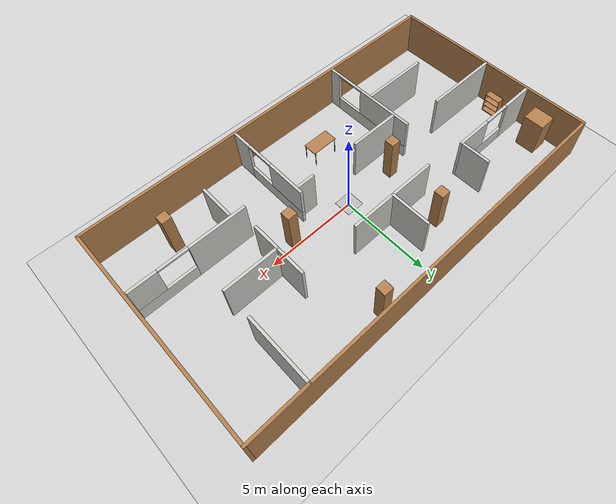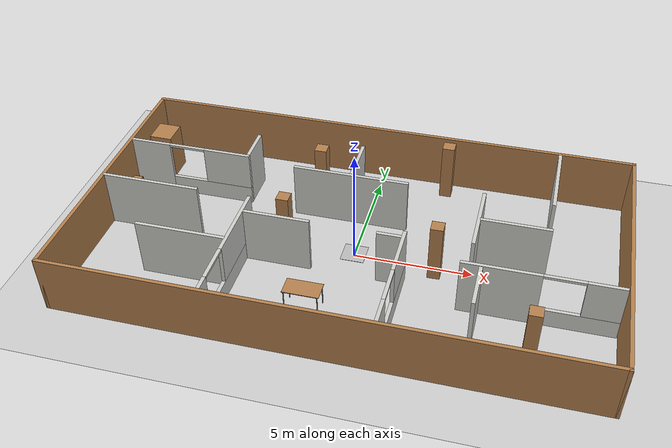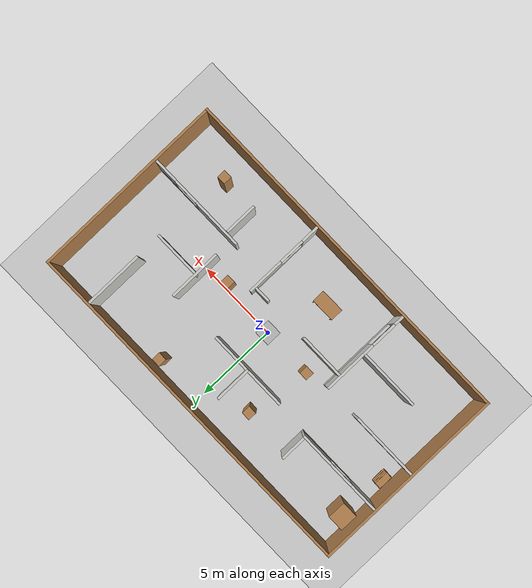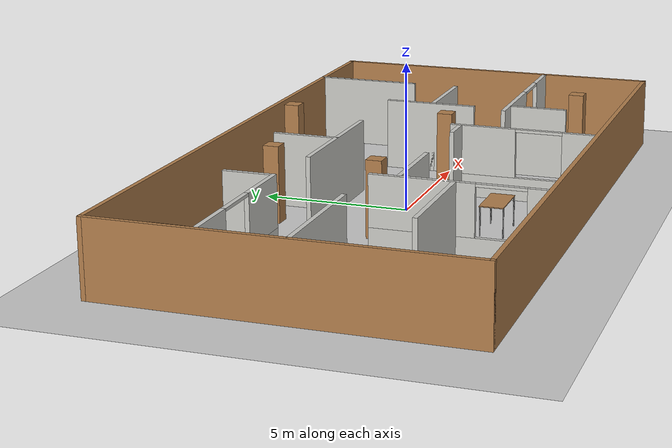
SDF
<sdf version="1.6">
 <world name="default">
  <light name="sun" type="directional">
   <pose>0 0 10 0 -0 0</pose>
   <diffuse>0.8 0.8 0.8 1</diffuse>
   <specular>0.2 0.2 0.2 1</specular>
   <attenuation>
    <range>1000</range>
    <constant>0.9</constant>
    <linear>0.01</linear>
    <quadratic>0.001</quadratic>
   </attenuation>
   <direction>-0.5 0.1 -0.9</direction>
  </light>
  <model name="ground_plane">
   <static>1</static>
   <link name="link">
    <collision name="collision">
     <geometry><plane><normal>0 0 1</normal><size>25 25</size></plane></geometry>
     <surface><friction><ode><mu>100</mu><mu2>50</mu2></ode></friction></surface>
    </collision>
    <visual name="visual">
     <cast_shadows>0</cast_shadows>
     <geometry><plane><normal>0 0 1</normal><size>25 25</size></plane></geometry>
     <material>
      <script><uri>file://media/materials/scripts/gazebo.material</uri><name>Gazebo/Grey</name></script>
     </material>
    </visual>
   </link>
  </model>
  <gravity>0 0 -9.8</gravity>
  <magnetic_field>6e-06 2.3e-05 -4.2e-05</magnetic_field>
  <atmosphere type="adiabatic"/>
  <plugin name="ros_interface_plugin" filename="librotors_gazebo_ros_interface_plugin.so"/>
  <physics type="ode">
   <gravity>0 0 -9.8066</gravity>
   <ode>
    <solver>
     <type>quick</type>
     <iters>10</iters>
     <sor>1.3</sor>
     <use_dynamic_moi_rescaling>0</use_dynamic_moi_rescaling>
    </solver>
    <constraints>
     <cfm>0.0</cfm>
     <erp>0.2</erp>
     <contact_max_correcting_vel>100</contact_max_correcting_vel>
     <contact_surface_layer>0.001</contact_surface_layer>
    </constraints>
   </ode>
   <max_step_size>0.004</max_step_size>
   <real_time_factor>1.0</real_time_factor>
   <real_time_update_rate>250</real_time_update_rate>
   <magnetic_field>6.0e-6 2.3e-5 -4.2e-5</magnetic_field>
  </physics>
  <scene>
   <sky><clouds><speed>30</speed></clouds><sunrise>5</sunrise><time>10</time><sunset>15</sunset></sky>
   <ambient>0.5 0.5 0.5 1</ambient>
   <background>0.7 0.7 0.7 1</background>
   <shadows>1</shadows>
  </scene>
  <spherical_coordinates>
   <surface_model>EARTH_WGS84</surface_model>
   <latitude_deg>0</latitude_deg>
   <longitude_deg>0</longitude_deg>
   <elevation>0</elevation>
   <heading_deg>0</heading_deg>
  </spherical_coordinates>
  <model name="20230316">
   <link name="Wall_14">
    <collision name="Wall_14_Collision">
     <geometry><box><size>12 0.15 2.5</size></box></geometry>
     <pose>0 0 1.25 0 -0 0</pose>
    </collision>
    <visual name="Wall_14_Visual">
     <pose>0 0 1.25 0 -0 0</pose>
     <geometry><box><size>12 0.15 2.5</size></box></geometry>
     <material>
      <script><uri>file://media/materials/scripts/gazebo.material</uri><name>Gazebo/Wood</name></script>
      <ambient>1 1 1 1</ambient>
     </material>
     <meta><layer>0</layer></meta>
    </visual>
    <pose>-10.925 0 0 0 -0 -1.5708</pose>
   </link>
   <link name="startflag">
    <pose>0 0 0.115 0 -0 0</pose>
    <inertial>
     <mass>0.39</mass>
     <inertia><ixx>0.00058</ixx><ixy>0</ixy><ixz>0</ixz><iyy>0.00058</iyy><iyz>0</iyz><izz>0.00019</izz></inertia>
    </inertial>
    <collision name="collision"><geometry><box><size>1 1 0.01</size></box></geometry></collision>
    <visual name="visual">
     <geometry><box><size>1 1 0.01</size></box></geometry>
     <material>
      <script>
       <uri>model://apriltag/materials/scripts</uri>
       <uri>model://apriltag/materials/textures</uri>
       <name>startflag/Diffuse</name>
      </script>
     </material>
    </visual>
   </link>
   <link name="Wall_15">
    <collision name="Wall_15_Collision">
     <geometry><box><size>22 0.15 2.5</size></box></geometry>
     <pose>0 0 1.25 0 -0 0</pose>
    </collision>
    <visual name="Wall_15_Visual">
     <pose>0 0 1.25 0 -0 0</pose>
     <geometry><box><size>22 0.15 2.5</size></box></geometry>
     <material>
      <script><uri>file://media/materials/scripts/gazebo.material</uri><name>Gazebo/Wood</name></script>
      <ambient>1 1 1 1</ambient>
     </material>
     <meta><layer>0</layer></meta>
    </visual>
    <pose>0 -5.925 0 0 -0 0</pose>
   </link>
   <link name="Wall_16">
    <collision name="Wall_16_Collision">
     <geometry><box><size>12 0.15 2.5</size></box></geometry>
     <pose>0 0 1.25 0 -0 0</pose>
    </collision>
    <visual name="Wall_16_Visual">
     <pose>0 0 1.25 0 -0 0</pose>
     <geometry><box><size>12 0.15 2.5</size></box></geometry>
     <material>
      <script><uri>file://media/materials/scripts/gazebo.material</uri><name>Gazebo/Wood</name></script>
      <ambient>1 1 1 1</ambient>
     </material>
     <meta><layer>0</layer></meta>
    </visual>
    <pose>10.925 0 0 0 -0 1.5708</pose>
   </link>
   <link name="Wall_17">
    <collision name="Wall_17_Collision">
     <geometry><box><size>22 0.15 2.5</size></box></geometry>
     <pose>0 0 1.25 0 -0 0</pose>
    </collision>
    <visual name="Wall_17_Visual">
     <pose>0 0 1.25 0 -0 0</pose>
     <geometry><box><size>22 0.15 2.5</size></box></geometry>
     <material>
      <script><uri>file://media/materials/scripts/gazebo.material</uri><name>Gazebo/Wood</name></script>
      <ambient>1 1 1 1</ambient>
     </material>
     <meta><layer>0</layer></meta>
    </visual>
    <pose>0 5.925 0 0 -0 3.14159</pose>
   </link>
   <link name="Wall_22">
    <collision name="Wall_22_Collision">
     <geometry><box><size>3.75 0.15 2.5</size></box></geometry>
     <pose>0 0 1.25 0 -0 0</pose>
    </collision>
    <visual name="Wall_22_Visual">
     <pose>0 0 1.25 0 -0 0</pose>
     <geometry><box><size>3.75 0.15 2.5</size></box></geometry>
     <material>
      <script><uri>file://media/materials/scripts/gazebo.material</uri><name>Gazebo/CeilingTiled</name></script>
      <ambient>0.921569 0.807843 0.615686 1</ambient>
     </material>
     <meta><layer>0</layer></meta>
    </visual>
    <pose>7.80154 4.0984 0 0 -0 -1.5708</pose>
   </link>
   <link name="Wall_25">
    <collision name="Wall_25_Collision">
     <geometry><box><size>3.25 0.15 2.5</size></box></geometry>
     <pose>0 0 1.25 0 -0 0</pose>
    </collision>
    <visual name="Wall_25_Visual">
     <pose>0 0 1.25 0 -0 0</pose>
     <geometry><box><size>3.25 0.15 2.5</size></box></geometry>
     <material>
      <script><uri>file://media/materials/scripts/gazebo.material</uri><name>Gazebo/CeilingTiled</name></script>
      <ambient>0.921569 0.807843 0.615686 1</ambient>
     </material>
     <meta><layer>0</layer></meta>
    </visual>
    <pose>4.95532 0.704173 0 0 -0 -1.5708</pose>
   </link>
   <link name="Wall_28">
    <collision name="Wall_28_Collision">
     <geometry><box><size>3 0.15 2.5</size></box></geometry>
     <pose>0 0 1.25 0 -0 0</pose>
    </collision>
    <visual name="Wall_28_Visual">
     <pose>0 0 1.25 0 -0 0</pose>
     <geometry><box><size>3 0.15 2.5</size></box></geometry>
     <material>
      <script><uri>file://media/materials/scripts/gazebo.material</uri><name>Gazebo/CeilingTiled</name></script>
      <ambient>0.921569 0.807843 0.615686 1</ambient>
     </material>
     <meta><layer>0</layer></meta>
    </visual>
    <pose>6.38032 0.631561 0 0 -0 0</pose>
   </link>
   <link name="Wall_30">
    <collision name="Wall_30_Collision">
     <geometry><box><size>2.25 0.15 2.5</size></box></geometry>
     <pose>0 0 1.25 0 -0 0</pose>
    </collision>
    <visual name="Wall_30_Visual">
     <pose>0 0 1.25 0 -0 0</pose>
     <geometry><box><size>2.25 0.15 2.5</size></box></geometry>
     <material>
      <script><uri>file://media/materials/scripts/gazebo.material</uri><name>Gazebo/CeilingTiled</name></script>
      <ambient>0.921569 0.807843 0.615686 1</ambient>
     </material>
     <meta><layer>0</layer></meta>
    </visual>
    <pose>-0.710524 3.27899 0 0 -0 -1.5708</pose>
   </link>
   <link name="Wall_32">
    <collision name="Wall_32_Collision">
     <geometry><box><size>5 0.15 2.5</size></box></geometry>
     <pose>0 0 1.25 0 -0 0</pose>
    </collision>
    <visual name="Wall_32_Visual">
     <pose>0 0 1.25 0 -0 0</pose>
     <geometry><box><size>5 0.15 2.5</size></box></geometry>
     <material>
      <script><uri>file://media/materials/scripts/gazebo.material</uri><name>Gazebo/CeilingTiled</name></script>
      <ambient>0.921569 0.807843 0.615686 1</ambient>
     </material>
     <meta><layer>0</layer></meta>
    </visual>
    <pose>-0.732742 2.20097 0 0 -0 0</pose>
   </link>
   <link name="Wall_41">
    <collision name="Wall_41_Collision">
     <geometry><box><size>4.25 0.15 2.5</size></box></geometry>
     <pose>0 0 1.25 0 -0 0</pose>
    </collision>
    <visual name="Wall_41_Visual">
     <pose>0 0 1.25 0 -0 0</pose>
     <geometry><box><size>4.25 0.15 2.5</size></box></geometry>
     <material>
      <script><uri>file://media/materials/scripts/gazebo.material</uri><name>Gazebo/CeilingTiled</name></script>
      <ambient>0.921569 0.807843 0.615686 1</ambient>
     </material>
     <meta><layer>0</layer></meta>
    </visual>
    <pose>-8.7952 -0.299446 0 0 -0 0</pose>
   </link>
   <link name="Wall_43">
    <collision name="Wall_43_Collision">
     <geometry><box><size>3.75 0.15 2.5</size></box></geometry>
     <pose>0 0 1.25 0 -0 0</pose>
    </collision>
    <visual name="Wall_43_Visual">
     <pose>0 0 1.25 0 -0 0</pose>
     <geometry><box><size>3.75 0.15 2.5</size></box></geometry>
     <material>
      <script><uri>file://media/materials/scripts/gazebo.material</uri><name>Gazebo/CeilingTiled</name></script>
      <ambient>0.921569 0.807843 0.615686 1</ambient>
     </material>
     <meta><layer>0</layer></meta>
    </visual>
    <pose>-6.33198 -2.95947 0 0 -0 0</pose>
   </link>
   <static>1</static>
  </model>
  <model name="window1">
   <pose>7.71672 -2.0654 0 0 -0 0</pose>
   <link name="Wall_0">
    <visual name="Wall_0_Visual_0">
     <pose>-1.54209 0 1.25 0 -0 0</pose>
     <geometry><box><size>3.11583 0.15 2.5</size></box></geometry>
     <material>
      <script><uri>file://media/materials/scripts/gazebo.material</uri><name>Gazebo/CeilingTiled</name></script>
      <ambient>1 0.764706 0.305882 1</ambient>
     </material>
     <meta><layer>0</layer></meta>
    </visual>
    <collision name="Wall_0_Collision_0">
     <geometry><box><size>3.11583 0.15 2.5</size></box></geometry>
     <pose>-1.54209 0 1.25 0 -0 0</pose>
    </collision>
    <visual name="Wall_0_Visual_1">
     <pose>1.55791 0 0.4 0 -0 0</pose>
     <geometry><box><size>3.08418 0.15 0.8</size></box></geometry>
     <material>
      <script><uri>file://media/materials/scripts/gazebo.material</uri><name>Gazebo/CeilingTiled</name></script>
      <ambient>1 0.764706 0.305882 1</ambient>
     </material>
     <meta><layer>0</layer></meta>
    </visual>
    <collision name="Wall_0_Collision_1">
     <geometry><box><size>3.08418 0.15 0.8</size></box></geometry>
     <pose>1.55791 0 0.4 0 -0 0</pose>
    </collision>
    <visual name="Wall_0_Visual_2">
     <pose>2.35791 0 1.65 0 -0 0</pose>
     <geometry><box><size>1.48418 0.15 1.7</size></box></geometry>
     <material>
      <script><uri>file://media/materials/scripts/gazebo.material</uri><name>Gazebo/CeilingTiled</name></script>
      <ambient>1 0.764706 0.305882 1</ambient>
     </material>
     <meta><layer>0</layer></meta>
    </visual>
    <collision name="Wall_0_Collision_2">
     <geometry><box><size>1.48418 0.15 1.7</size></box></geometry>
     <pose>2.35791 0 1.65 0 -0 0</pose>
    </collision>
    <visual name="Wall_0_Visual_3">
     <pose>0.815825 0 2.45 0 -0 0</pose>
     <geometry><box><size>1.6 0.15 0.1</size></box></geometry>
     <material>
      <script><uri>file://media/materials/scripts/gazebo.material</uri><name>Gazebo/CeilingTiled</name></script>
      <ambient>1 0.764706 0.305882 1</ambient>
     </material>
     <meta><layer>0</layer></meta>
    </visual>
    <collision name="Wall_0_Collision_3">
     <geometry><box><size>1.6 0.15 0.1</size></box></geometry>
     <pose>0.815825 0 2.45 0 -0 0</pose>
    </collision>
   </link>
   <static>1</static>
  </model>
  <model name="window2">
   <pose>2.26488 -3.35 0 0 -0 0</pose>
   <link name="Wall_2">
    <pose>0 -0 0 0 -0 1.5708</pose>
    <visual name="Wall_2_Visual_0">
     <pose>-1.94455 0 1.25 0 -0 0</pose>
     <geometry><box><size>1.1109 0.15 2.5</size></box></geometry>
     <material>
      <script><uri>file://media/materials/scripts/gazebo.material</uri><name>Gazebo/CeilingTiled</name></script>
      <ambient>1 0.764706 0.305882 1</ambient>
     </material>
     <meta><layer>0</layer></meta>
    </visual>
    <collision name="Wall_2_Collision_0">
     <geometry><box><size>1.1109 0.15 2.5</size></box></geometry>
     <pose>-1.94455 0 1.25 0 -0 0</pose>
    </collision>
    <visual name="Wall_2_Visual_1">
     <pose>0.555448 0 0.4 0 -0 0</pose>
     <geometry><box><size>3.8891 0.15 0.8</size></box></geometry>
     <material>
      <script><uri>file://media/materials/scripts/gazebo.material</uri><name>Gazebo/CeilingTiled</name></script>
      <ambient>1 0.764706 0.305882 1</ambient>
     </material>
     <meta><layer>0</layer></meta>
    </visual>
    <collision name="Wall_2_Collision_1">
     <geometry><box><size>3.8891 0.15 0.8</size></box></geometry>
     <pose>0.555448 0 0.4 0 -0 0</pose>
    </collision>
    <visual name="Wall_2_Visual_2">
     <pose>1.35545 0 1.65 0 -0 0</pose>
     <geometry><box><size>2.2891 0.15 1.7</size></box></geometry>
     <material>
      <script><uri>file://media/materials/scripts/gazebo.material</uri><name>Gazebo/CeilingTiled</name></script>
      <ambient>1 0.764706 0.305882 1</ambient>
     </material>
     <meta><layer>0</layer></meta>
    </visual>
    <collision name="Wall_2_Collision_2">
     <geometry><box><size>2.2891 0.15 1.7</size></box></geometry>
     <pose>1.35545 0 1.65 0 -0 0</pose>
    </collision>
    <visual name="Wall_2_Visual_3">
     <pose>-0.589104 0 2.45 0 -0 0</pose>
     <geometry><box><size>1.6 0.15 0.1</size></box></geometry>
     <material>
      <script><uri>file://media/materials/scripts/gazebo.material</uri><name>Gazebo/CeilingTiled</name></script>
      <ambient>1 0.764706 0.305882 1</ambient>
     </material>
     <meta><layer>0</layer></meta>
    </visual>
    <collision name="Wall_2_Collision_3">
     <geometry><box><size>1.6 0.15 0.1</size></box></geometry>
     <pose>-0.589104 0 2.45 0 -0 0</pose>
    </collision>
   </link>
   <static>1</static>
  </model>
  <model name="window3">
   <pose>-4.4 -3.05 0 0 -0 0</pose>
   <link name="Wall_0">
    <pose>0 0 0 0 -0 1.5708</pose>
    <visual name="Wall_0_Visual_0">
     <pose>-2.48617 0 1.25 0 -0 0</pose>
     <geometry><box><size>0.62765 0.15 2.5</size></box></geometry>
     <material>
      <script><uri>file://media/materials/scripts/gazebo.material</uri><name>Gazebo/CeilingTiled</name></script>
      <ambient>1 0.764706 0.305882 1</ambient>
     </material>
     <meta><layer>0</layer></meta>
    </visual>
    <collision name="Wall_0_Collision_0">
     <geometry><box><size>0.62765 0.15 2.5</size></box></geometry>
     <pose>-2.48617 0 1.25 0 -0 0</pose>
    </collision>
    <visual name="Wall_0_Visual_1">
     <pose>0.313825 0 0.4 0 -0 0</pose>
     <geometry><box><size>4.97235 0.15 0.8</size></box></geometry>
     <material>
      <script><uri>file://media/materials/scripts/gazebo.material</uri><name>Gazebo/CeilingTiled</name></script>
      <ambient>1 0.764706 0.305882 1</ambient>
     </material>
     <meta><layer>0</layer></meta>
    </visual>
    <collision name="Wall_0_Collision_1">
     <geometry><box><size>4.97235 0.15 0.8</size></box></geometry>
     <pose>0.313825 0 0.4 0 -0 0</pose>
    </collision>
    <visual name="Wall_0_Visual_2">
     <pose>1.11383 0 1.65 0 -0 0</pose>
     <geometry><box><size>3.37235 0.15 1.7</size></box></geometry>
     <material>
      <script><uri>file://media/materials/scripts/gazebo.material</uri><name>Gazebo/CeilingTiled</name></script>
      <ambient>1 0.764706 0.305882 1</ambient>
     </material>
     <meta><layer>0</layer></meta>
    </visual>
    <collision name="Wall_0_Collision_2">
     <geometry><box><size>3.37235 0.15 1.7</size></box></geometry>
     <pose>1.11383 0 1.65 0 -0 0</pose>
    </collision>
    <visual name="Wall_0_Visual_3">
     <pose>-1.37235 0 2.45 0 -0 0</pose>
     <geometry><box><size>1.6 0.15 0.1</size></box></geometry>
     <material>
      <script><uri>file://media/materials/scripts/gazebo.material</uri><name>Gazebo/CeilingTiled</name></script>
      <ambient>1 0.764706 0.305882 1</ambient>
     </material>
     <meta><layer>0</layer></meta>
    </visual>
    <collision name="Wall_0_Collision_3">
     <geometry><box><size>1.6 0.15 0.1</size></box></geometry>
     <pose>-1.37235 0 2.45 0 -0 0</pose>
    </collision>
   </link>
   <static>1</static>
  </model>
  <model name="window4">
   <pose>-8.1 2.44144 0 0 -0 0</pose>
   <link name="Wall_5">
    <visual name="Wall_5_Visual_0">
     <pose>-1.8495 0 1.25 0 -0 0</pose>
     <geometry><box><size>1.801 0.15 2.5</size></box></geometry>
     <material>
      <script><uri>file://media/materials/scripts/gazebo.material</uri><name>Gazebo/CeilingTiled</name></script>
      <ambient>1 0.764706 0.305882 1</ambient>
     </material>
     <meta><layer>0</layer></meta>
    </visual>
    <collision name="Wall_5_Collision_0">
     <geometry><box><size>1.801 0.15 2.5</size></box></geometry>
     <pose>-1.8495 0 1.25 0 -0 0</pose>
    </collision>
    <visual name="Wall_5_Visual_1">
     <pose>0.9005 0 0.4 0 -0 0</pose>
     <geometry><box><size>3.699 0.15 0.8</size></box></geometry>
     <material>
      <script><uri>file://media/materials/scripts/gazebo.material</uri><name>Gazebo/CeilingTiled</name></script>
      <ambient>1 0.764706 0.305882 1</ambient>
     </material>
     <meta><layer>0</layer></meta>
    </visual>
    <collision name="Wall_5_Collision_1">
     <geometry><box><size>3.699 0.15 0.8</size></box></geometry>
     <pose>0.9005 0 0.4 0 -0 0</pose>
    </collision>
    <visual name="Wall_5_Visual_2">
     <pose>1.7005 0 1.65 0 -0 0</pose>
     <geometry><box><size>2.099 0.15 1.7</size></box></geometry>
     <material>
      <script><uri>file://media/materials/scripts/gazebo.material</uri><name>Gazebo/CeilingTiled</name></script>
      <ambient>1 0.764706 0.305882 1</ambient>
     </material>
     <meta><layer>0</layer></meta>
    </visual>
    <collision name="Wall_5_Collision_2">
     <geometry><box><size>2.099 0.15 1.7</size></box></geometry>
     <pose>1.7005 0 1.65 0 -0 0</pose>
    </collision>
    <visual name="Wall_5_Visual_3">
     <pose>-0.149 0 2.45 0 -0 0</pose>
     <geometry><box><size>1.6 0.15 0.1</size></box></geometry>
     <material>
      <script><uri>file://media/materials/scripts/gazebo.material</uri><name>Gazebo/CeilingTiled</name></script>
      <ambient>1 0.764706 0.305882 1</ambient>
     </material>
     <meta><layer>0</layer></meta>
    </visual>
    <collision name="Wall_5_Collision_3">
     <geometry><box><size>1.6 0.15 0.1</size></box></geometry>
     <pose>-0.149 0 2.45 0 -0 0</pose>
    </collision>
   </link>
   <static>1</static>
  </model>
  <model name="add_wall1">
   <pose>5.42333 -3.1581 0 0 -0 0</pose>
   <link name="Wall_1">
    <collision name="Wall_1_Collision">
     <geometry><box><size>2 0.15 2.5</size></box></geometry>
     <pose>0 0 1.25 0 -0 0</pose>
    </collision>
    <visual name="Wall_1_Visual">
     <pose>0 0 1.25 0 -0 0</pose>
     <geometry><box><size>2 0.15 2.5</size></box></geometry>
     <material>
      <script><uri>file://media/materials/scripts/gazebo.material</uri><name>Gazebo/CeilingTiled</name></script>
      <ambient>1 0.764706 0.305882 1</ambient>
     </material>
     <meta><layer>0</layer></meta>
    </visual>
    <pose>0 0 0 0 -0 -1.5708</pose>
   </link>
   <static>1</static>
  </model>
  <model name="add_wall2">
   <pose>-5.43 3.31172 0 0 -0 0</pose>
   <link name="Wall_5">
    <collision name="Wall_5_Collision">
     <geometry><box><size>1.6 0.15 2.5</size></box></geometry>
     <pose>0 0 1.25 0 -0 0</pose>
    </collision>
    <visual name="Wall_5_Visual">
     <pose>0 0 1.25 0 -0 0</pose>
     <geometry><box><size>1.6 0.15 2.5</size></box></geometry>
     <material>
      <script><uri>file://media/materials/scripts/gazebo.material</uri><name>Gazebo/CeilingTiled</name></script>
      <ambient>1 0.764706 0.305882 1</ambient>
     </material>
     <meta><layer>0</layer></meta>
    </visual>
    <pose>0 0 0 0 -0 1.5708</pose>
   </link>
   <static>1</static>
  </model>
  <model name="add_wall3">
   <pose>-2.95 -1.2 0 0 -0 0</pose>
   <link name="Wall_9">
    <collision name="Wall_9_Collision">
     <geometry><box><size>2.8 0.15 2.5</size></box></geometry>
     <pose>0 0 1.25 0 -0 0</pose>
    </collision>
    <visual name="Wall_9_Visual">
     <pose>0 0 1.25 0 -0 0</pose>
     <geometry><box><size>2.8 0.15 2.5</size></box></geometry>
     <material>
      <script><uri>file://media/materials/scripts/gazebo.material</uri><name>Gazebo/CeilingTiled</name></script>
      <ambient>1 0.764706 0.305882 1</ambient>
     </material>
     <meta><layer>0</layer></meta>
    </visual>
   </link>
   <static>1</static>
  </model>
  <model name="add_wall4">
   <pose>1.69 -1.2 0 0 -0 0</pose>
   <link name="Wall_15">
    <collision name="Wall_15_Collision">
     <geometry><box><size>1 0.15 2.5</size></box></geometry>
     <pose>0 0 1.25 0 -0 0</pose>
    </collision>
    <visual name="Wall_15_Visual">
     <pose>0 0 1.25 0 -0 0</pose>
     <geometry><box><size>1 0.15 2.5</size></box></geometry>
     <material>
      <script><uri>file://media/materials/scripts/gazebo.material</uri><name>Gazebo/CeilingTiled</name></script>
      <ambient>1 0.764706 0.305882 1</ambient>
     </material>
     <meta><layer>0</layer></meta>
    </visual>
    <pose>0 0 0 0 -0 3.14159</pose>
   </link>
   <static>1</static>
  </model>
  <model name="unit_box">
   <pose>-10.03 3.96841 1.01795 -4e-06 -2e-06 -0.005315</pose>
   <link name="link">
    <inertial>
     <mass>1</mass>
     <inertia>
      <ixx>0.166667</ixx>
      <ixy>0</ixy>
      <ixz>0</ixz>
      <iyy>0.166667</iyy>
      <iyz>0</iyz>
      <izz>0.166667</izz>
     </inertia>
    </inertial>
    <collision name="collision"><geometry><box><size>1 1.11313 2.03591</size></box></geometry></collision>
    <visual name="visual">
     <geometry><box><size>1 1.11313 2.03591</size></box></geometry>
     <material>
      <script><uri>file://media/materials/scripts/gazebo.material</uri><name>Gazebo/Wood</name></script>
     </material>
    </visual>
   </link>
   <static>0</static>
  </model>
  <model name="table">
   <static>0</static>
   <link name="link">
    <collision name="surface">
     <pose>0 0 1 0 -0 0</pose>
     <geometry><box><size>1.5 0.8 0.03</size></box></geometry>
     <surface><friction><ode><mu>0.6</mu><mu2>0.6</mu2></ode></friction></surface>
    </collision>
    <visual name="visual1">
     <pose>0 0 1 0 -0 0</pose>
     <geometry><box><size>1.5 0.8 0.03</size></box></geometry>
     <material>
      <script><uri>file://media/materials/scripts/gazebo.material</uri><name>Gazebo/Wood</name></script>
     </material>
    </visual>
    <collision name="front_left_leg">
     <pose>0.68 0.38 0.5 0 -0 0</pose>
     <geometry><cylinder><radius>0.02</radius><length>1</length></cylinder></geometry>
    </collision>
    <visual name="front_left_leg">
     <pose>0.68 0.38 0.5 0 -0 0</pose>
     <geometry><cylinder><radius>0.02</radius><length>1</length></cylinder></geometry>
     <material>
      <script><uri>file://media/materials/scripts/gazebo.material</uri><name>Gazebo/Grey</name></script>
     </material>
    </visual>
    <collision name="front_right_leg">
     <pose>0.68 -0.38 0.5 0 -0 0</pose>
     <geometry><cylinder><radius>0.02</radius><length>1</length></cylinder></geometry>
    </collision>
    <visual name="front_right_leg">
     <pose>0.68 -0.38 0.5 0 -0 0</pose>
     <geometry><cylinder><radius>0.02</radius><length>1</length></cylinder></geometry>
     <material>
      <script><uri>file://media/materials/scripts/gazebo.material</uri><name>Gazebo/Grey</name></script>
     </material>
    </visual>
    <collision name="back_right_leg">
     <pose>-0.68 -0.38 0.5 0 -0 0</pose>
     <geometry><cylinder><radius>0.02</radius><length>1</length></cylinder></geometry>
    </collision>
    <visual name="back_right_leg">
     <pose>-0.68 -0.38 0.5 0 -0 0</pose>
     <geometry><cylinder><radius>0.02</radius><length>1</length></cylinder></geometry>
     <material>
      <script><uri>file://media/materials/scripts/gazebo.material</uri><name>Gazebo/Grey</name></script>
     </material>
    </visual>
    <collision name="back_left_leg">
     <pose>-0.68 0.38 0.5 0 -0 0</pose>
     <geometry><cylinder><radius>0.02</radius><length>1</length></cylinder></geometry>
    </collision>
    <visual name="back_left_leg">
     <pose>-0.68 0.38 0.5 0 -0 0</pose>
     <geometry><cylinder><radius>0.02</radius><length>1</length></cylinder></geometry>
     <material>
      <script><uri>file://media/materials/scripts/gazebo.material</uri><name>Gazebo/Grey</name></script>
     </material>
    </visual>
    <inertial>
     <inertia><ixx>1</ixx><ixy>0</ixy><ixz>0</ixz><iyy>1</iyy><iyz>0</iyz><izz>1</izz></inertia>
     <mass>1</mass>
    </inertial>
   </link>
   <pose>-1.20164 -3.44571 0 0 -0 0.005682</pose>
  </model>
  <model name="unit_box_0">
   <pose>-3 0 1.29125 -2e-06 -0 -0.000704</pose>
   <link name="link">
    <inertial>
     <mass>1</mass>
     <inertia>
      <ixx>0.166667</ixx>
      <ixy>0</ixy>
      <ixz>0</ixz>
      <iyy>0.166667</iyy>
      <iyz>0</iyz>
      <izz>0.166667</izz>
     </inertia>
    </inertial>
    <collision name="collision"><geometry><box><size>0.52404 0.528613 2.5825</size></box></geometry></collision>
    <visual name="visual">
     <geometry><box><size>0.52404 0.528613 2.5825</size></box></geometry>
     <material>
      <script><uri>file://media/materials/scripts/gazebo.material</uri><name>Gazebo/Wood</name></script>
     </material>
    </visual>
   </link>
   <static>0</static>
  </model>
  <model name="unit_box_0_clone">
   <pose>3.46103 -0.330294 1.29125 1e-06 1e-06 0.014324</pose>
   <link name="link">
    <inertial>
     <mass>1</mass>
     <inertia>
      <ixx>0.166667</ixx>
      <ixy>0</ixy>
      <ixz>0</ixz>
      <iyy>0.166667</iyy>
      <iyz>0</iyz>
      <izz>0.166667</izz>
     </inertia>
    </inertial>
    <collision name="collision"><geometry><box><size>0.52404 0.528614 2.5825</size></box></geometry></collision>
    <visual name="visual">
     <geometry><box><size>0.52404 0.528614 2.5825</size></box></geometry>
     <material>
      <script><uri>file://media/materials/scripts/gazebo.material</uri><name>Gazebo/Wood</name></script>
     </material>
    </visual>
   </link>
   <static>0</static>
  </model>
  <model name="unit_box_0_clone_0">
   <pose>3 5.20912 1.29125 0 -0 0.000972</pose>
   <link name="link">
    <inertial>
     <mass>1</mass>
     <inertia>
      <ixx>0.166667</ixx>
      <ixy>0</ixy>
      <ixz>0</ixz>
      <iyy>0.166667</iyy>
      <iyz>0</iyz>
      <izz>0.166667</izz>
     </inertia>
    </inertial>
    <collision name="collision"><geometry><box><size>0.52404 0.528614 2.5825</size></box></geometry></collision>
    <visual name="visual">
     <geometry><box><size>0.52404 0.528614 2.5825</size></box></geometry>
     <material>
      <script><uri>file://media/materials/scripts/gazebo.material</uri><name>Gazebo/Wood</name></script>
     </material>
    </visual>
   </link>
   <static>0</static>
  </model>
  <model name="unit_box_0_clone_2">
   <pose>-2.41588 3.7082 1.29125 -1e-06 1e-06 0.000266</pose>
   <link name="link">
    <inertial>
     <mass>1</mass>
     <inertia>
      <ixx>0.166667</ixx>
      <ixy>0</ixy>
      <ixz>0</ixz>
      <iyy>0.166667</iyy>
      <iyz>0</iyz>
      <izz>0.166667</izz>
     </inertia>
    </inertial>
    <collision name="collision"><geometry><box><size>0.52404 0.528614 2.5825</size></box></geometry></collision>
    <visual name="visual">
     <geometry><box><size>0.52404 0.528614 2.5825</size></box></geometry>
     <material>
      <script><uri>file://media/materials/scripts/gazebo.material</uri><name>Gazebo/Wood</name></script>
     </material>
    </visual>
   </link>
   <static>0</static>
  </model>
  <model name="unit_box_0_clone_3">
   <pose>7.64647 -4.07673 1.29125 -1e-06 -1e-06 0.000344</pose>
   <link name="link">
    <inertial>
     <mass>1</mass>
     <inertia>
      <ixx>0.166667</ixx>
      <ixy>0</ixy>
      <ixz>0</ixz>
      <iyy>0.166667</iyy>
      <iyz>0</iyz>
      <izz>0.166667</izz>
     </inertia>
    </inertial>
    <collision name="collision"><geometry><box><size>0.52404 0.528614 2.5825</size></box></geometry></collision>
    <visual name="visual">
     <geometry><box><size>0.52404 0.528614 2.5825</size></box></geometry>
     <material>
      <script><uri>file://media/materials/scripts/gazebo.material</uri><name>Gazebo/Wood</name></script>
     </material>
    </visual>
   </link>
   <static>0</static>
  </model>
  <model name="bookshelf">
   <static>1</static>
   <link name="link">
    <inertial><mass>1</mass></inertial>
    <collision name="back">
     <pose>0 0.005 0.6 0 -0 0</pose>
     <geometry><box><size>0.9 0.01 1.2</size></box></geometry>
    </collision>
    <visual name="visual1">
     <pose>0 0.005 0.6 0 -0 0</pose>
     <geometry><box><size>0.9 0.01 1.2</size></box></geometry>
     <material>
      <script><uri>file://media/materials/scripts/gazebo.material</uri><name>Gazebo/Wood</name></script>
     </material>
    </visual>
    <collision name="left_side">
     <pose>0.45 -0.195 0.6 0 -0 0</pose>
     <geometry><box><size>0.02 0.4 1.2</size></box></geometry>
    </collision>
    <visual name="visual2">
     <pose>0.45 -0.195 0.6 0 -0 0</pose>
     <geometry><box><size>0.02 0.4 1.2</size></box></geometry>
     <material>
      <script><uri>file://media/materials/scripts/gazebo.material</uri><name>Gazebo/Wood</name></script>
     </material>
    </visual>
    <collision name="right_side">
     <pose>-0.45 -0.195 0.6 0 -0 0</pose>
     <geometry><box><size>0.02 0.4 1.2</size></box></geometry>
    </collision>
    <visual name="visual3">
     <pose>-0.45 -0.195 0.6 0 -0 0</pose>
     <geometry><box><size>0.02 0.4 1.2</size></box></geometry>
     <material>
      <script><uri>file://media/materials/scripts/gazebo.material</uri><name>Gazebo/Wood</name></script>
     </material>
    </visual>
    <collision name="bottom">
     <pose>0 -0.195 0.03 0 -0 0</pose>
     <geometry><box><size>0.88 0.4 0.06</size></box></geometry>
    </collision>
    <visual name="visual4">
     <pose>0 -0.195 0.03 0 -0 0</pose>
     <geometry><box><size>0.88 0.4 0.06</size></box></geometry>
     <material>
      <script><uri>file://media/materials/scripts/gazebo.material</uri><name>Gazebo/Wood</name></script>
     </material>
    </visual>
    <collision name="top">
     <pose>0 -0.195 1.19 0 -0 0</pose>
     <geometry><box><size>0.88 0.4 0.02</size></box></geometry>
    </collision>
    <visual name="visual5">
     <pose>0 -0.195 1.19 0 -0 0</pose>
     <geometry><box><size>0.88 0.4 0.02</size></box></geometry>
     <material>
      <script><uri>file://media/materials/scripts/gazebo.material</uri><name>Gazebo/Wood</name></script>
     </material>
    </visual>
    <collision name="low_shelf">
     <pose>0 -0.195 0.43 0 -0 0</pose>
     <geometry><box><size>0.88 0.4 0.02</size></box></geometry>
    </collision>
    <visual name="visual6">
     <pose>0 -0.195 0.43 0 -0 0</pose>
     <geometry><box><size>0.88 0.4 0.02</size></box></geometry>
     <material>
      <script><uri>file://media/materials/scripts/gazebo.material</uri><name>Gazebo/Wood</name></script>
     </material>
    </visual>
    <collision name="high_shelf">
     <pose>0 -0.195 0.8 0 -0 0</pose>
     <geometry><box><size>0.88 0.4 0.02</size></box></geometry>
    </collision>
    <visual name="visual7">
     <pose>0 -0.195 0.8 0 -0 0</pose>
     <geometry><box><size>0.88 0.4 0.02</size></box></geometry>
     <material>
      <script><uri>file://media/materials/scripts/gazebo.material</uri><name>Gazebo/Wood</name></script>
     </material>
    </visual>
   </link>
   <pose>-10.5389 1.04127 0 0 -0 1.57</pose>
  </model>
 </world>
</sdf>
